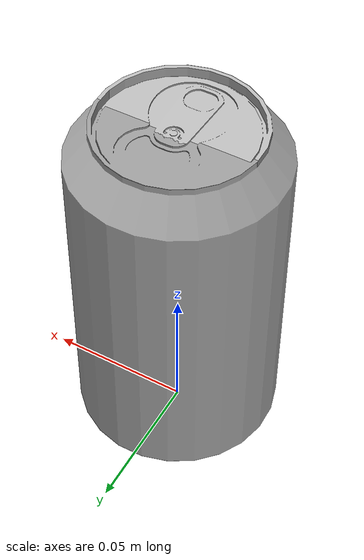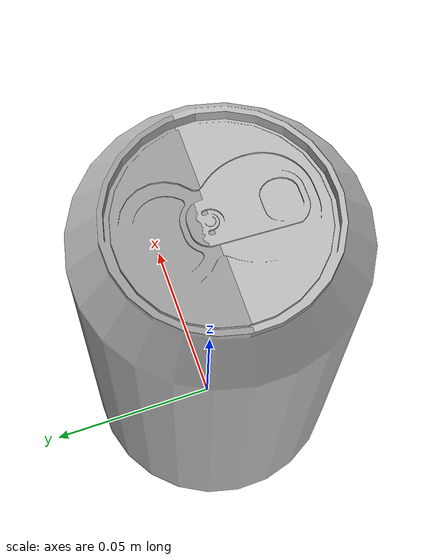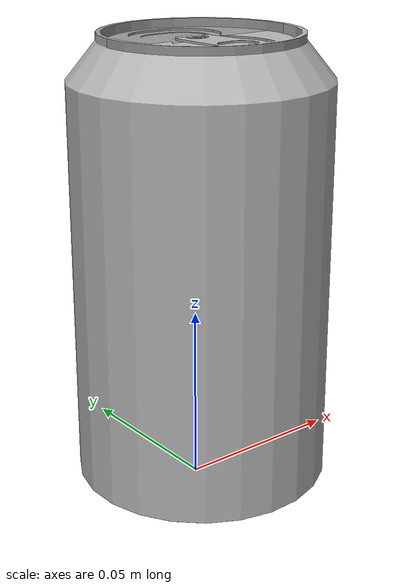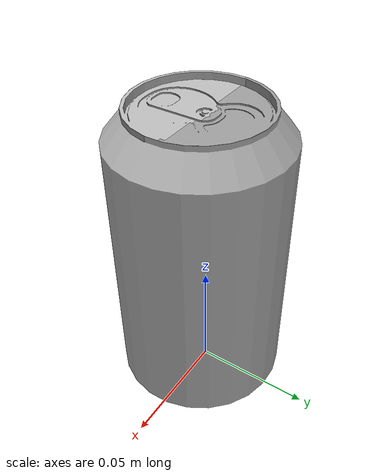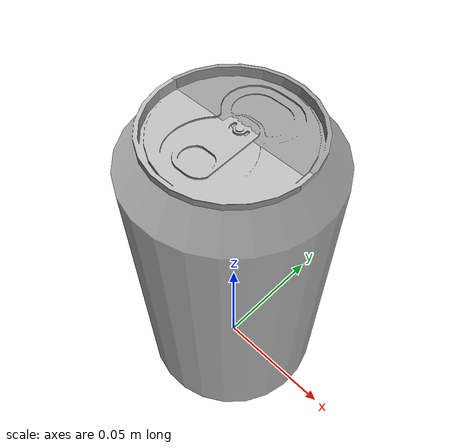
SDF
<?xml version='1.0'?>
<sdf version='1.6'>
  <world name='grocery_world'>
  <model name='can_pepsi'>
    <link name='link_0'>
         <visual name='visual'>
        <pose frame=''>0 0 0 1.57 0 0</pose>
        <geometry>
          <mesh>
            <uri>pepsi.obj</uri>
            <scale>1 1 1</scale>
          </mesh>
        </geometry>
             <material>
              <color rgba="1 1 1 1"/>
        </material>
      </visual>
      <collision name='collision'>
        <laser_retro>0</laser_retro>
        <max_contacts>10</max_contacts>
        <pose frame=''>0 0 0 0 -0 0</pose>
        <geometry>
          <mesh>
            <uri>pepsi.obj</uri>
            <scale>1 1 1</scale>
          </mesh>
        </geometry>
       </collision>

       <inertial>
          <pose>0 0 0 0 0 0</pose>
          <mass>0.00056</mass>
          <inertia>
            <ixx>0.004878</ixx>
            <ixy>-6.2341e-07</ixy>
            <ixz>-7.4538e-07</ixz>
            <iyy>0.00090164</iyy>
            <iyz>-0.00014394</iyz>
            <izz>0.0042946</izz>
          </inertia>
    </inertial>

    </link>
    <link name='link_1'>
        <visual name='visual'>
        <pose frame=''>0 0 0 0 -0 0</pose>
        <geometry>
          <mesh>
            <uri>meshes/metal.dae</uri>
            <scale>1 1 1</scale>
          </mesh>
        </geometry>
        <material>
          <lighting>1</lighting>
          <script>
            <uri>file://media/materials/scripts/gazebo.material</uri>
            <name>Gazebo/Grey</name>
          </script>
                <ambient>0.666 0.666 0.666 1</ambient>
          <diffuse>0.666 0.666 0.666 1</diffuse>
          <specular>0.01 0.01 0.01 1</specular>
          <emissive>0 0 0 1</emissive>
        </material>
        <cast_shadows>1</cast_shadows>
        <transparency>0</transparency>
      </visual>
      <collision name='collision'>
        <laser_retro>0</laser_retro>
        <max_contacts>10</max_contacts>
        <pose frame=''>0 0 0 0 -0 0</pose>
        <geometry>
          <mesh>
            <uri>meshes/metal.dae</uri>
            <scale>1 1 1</scale>
          </mesh>
        </geometry>
      </collision>
      <inertial>
          <pose>0 0 0 0 0 0</pose>
          <mass>0.56</mass>
          <inertia>
            <ixx>0.004878</ixx>
            <ixy>-6.2341e-07</ixy>
            <ixz>-7.4538e-07</ixz>
            <iyy>0.00090164</iyy>
            <iyz>-0.00014394</iyz>
            <izz>0.0042946</izz>
          </inertia>
    </inertial>
    </link>

    <joint name="joint" type="fixed">
      <parent>link_0</parent>
      <child>link_1</child>
    </joint>

    <static>1</static>
    <allow_auto_disable>1</allow_auto_disable>
  </model>
</world>
</sdf>
